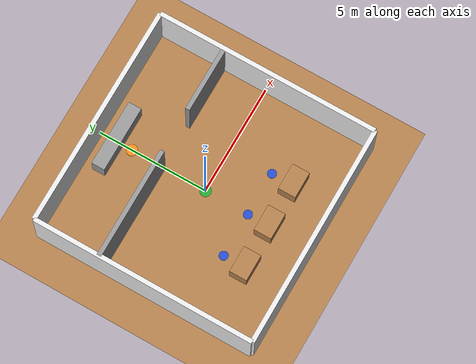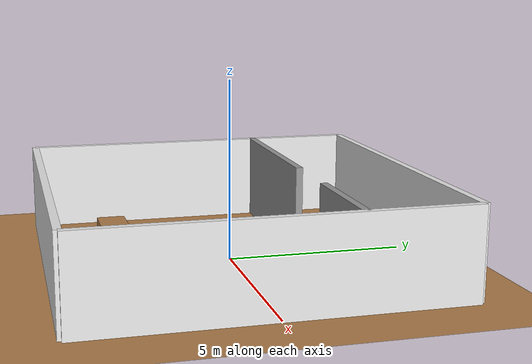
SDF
<?xml version="1.0"?>
<sdf version="1.6">
  <world name="cafe_world">

    <!--                    PHYSICS & ENGINE                          -->
    <physics type="ode">
      <real_time_update_rate>1000.0</real_time_update_rate>
      <max_step_size>0.001</max_step_size>
      <real_time_factor>1</real_time_factor>
    </physics>

    <!--                    LIGHTING                                   -->
    <light name="sun" type="directional">
      <cast_shadows>true</cast_shadows>
      <pose>0 0 10 0 0 0</pose>
      <diffuse>0.9 0.9 0.9 1</diffuse>
      <specular>0.3 0.3 0.3 1</specular>
      <direction>-0.5 0.5 -1</direction>
    </light>

    <light name="ceiling_light" type="point">
      <pose>0 0 3.5 0 0 0</pose>
      <diffuse>0.8 0.8 0.8 1</diffuse>
      <specular>0.1 0.1 0.1 1</specular>
      <attenuation>
        <range>10</range>
        <constant>0.5</constant>
        <linear>0.01</linear>
        <quadratic>0.001</quadratic>
      </attenuation>
      <cast_shadows>false</cast_shadows>
    </light>

    <!--                    GROUND PLANE                              -->
    <model name="ground_plane">
      <static>true</static>
      <link name="link">
        <collision name="collision">
          <geometry>
            <plane><normal>0 0 1</normal><size>20 20</size></plane>
          </geometry>
          <surface>
            <friction><ode><mu>100</mu><mu2>50</mu2></ode></friction>
          </surface>
        </collision>
        <visual name="visual">
          <geometry>
            <plane><normal>0 0 1</normal><size>20 20</size></plane>
          </geometry>
          <material>
            <script>
              <uri>file://media/materials/scripts/gazebo.material</uri>
              <name>Gazebo/WoodFloor</name>
            </script>
          </material>
        </visual>
      </link>
    </model>

    <!--   CAFE LAYOUT (top-down view)                               -->
    <!--       |   [KITCHEN COUNTER]       |                         -->
    <!--       |   kitchen @ (0, 3.5)      |                         -->
    <!--       | ─ ─ ─ ─ ─ ─ ─ ─ ─ ─ ─  |  <- divider wall        -->
    <!--       |      home @ (0, 0)        |                         -->

    <!-- North Wall -->
    <model name="wall_north">
      <static>true</static>
      <pose>0 5 1.25 0 0 0</pose>
      <link name="link">
        <collision name="collision">
          <geometry><box><size>10 0.2 2.5</size></box></geometry>
        </collision>
        <visual name="visual">
          <geometry><box><size>10 0.2 2.5</size></box></geometry>
          <material><script>
            <uri>file://media/materials/scripts/gazebo.material</uri>
            <name>Gazebo/White</name>
          </script></material>
        </visual>
      </link>
    </model>

    <!-- South Wall -->
    <model name="wall_south">
      <static>true</static>
      <pose>0 -5 1.25 0 0 0</pose>
      <link name="link">
        <collision name="collision">
          <geometry><box><size>10 0.2 2.5</size></box></geometry>
        </collision>
        <visual name="visual">
          <geometry><box><size>10 0.2 2.5</size></box></geometry>
          <material><script>
            <uri>file://media/materials/scripts/gazebo.material</uri>
            <name>Gazebo/White</name>
          </script></material>
        </visual>
      </link>
    </model>

    <!-- East Wall -->
    <model name="wall_east">
      <static>true</static>
      <pose>5 0 1.25 0 0 0</pose>
      <link name="link">
        <collision name="collision">
          <geometry><box><size>0.2 10 2.5</size></box></geometry>
        </collision>
        <visual name="visual">
          <geometry><box><size>0.2 10 2.5</size></box></geometry>
          <material><script>
            <uri>file://media/materials/scripts/gazebo.material</uri>
            <name>Gazebo/White</name>
          </script></material>
        </visual>
      </link>
    </model>

    <!-- West Wall -->
    <model name="wall_west">
      <static>true</static>
      <pose>-5 0 1.25 0 0 0</pose>
      <link name="link">
        <collision name="collision">
          <geometry><box><size>0.2 10 2.5</size></box></geometry>
        </collision>
        <visual name="visual">
          <geometry><box><size>0.2 10 2.5</size></box></geometry>
          <material><script>
            <uri>file://media/materials/scripts/gazebo.material</uri>
            <name>Gazebo/White</name>
          </script></material>
        </visual>
      </link>
    </model>

    <!-- Kitchen Divider Wall (partial — leaves doorway gap) -->
    <model name="wall_divider_left">
      <static>true</static>
      <pose>-2.5 2.0 1.25 0 0 0</pose>
      <link name="link">
        <collision name="collision">
          <geometry><box><size>5 0.2 2.5</size></box></geometry>
        </collision>
        <visual name="visual">
          <geometry><box><size>5 0.2 2.5</size></box></geometry>
          <material><script>
            <uri>file://media/materials/scripts/gazebo.material</uri>
            <name>Gazebo/Grey</name>
          </script></material>
        </visual>
      </link>
    </model>

    <model name="wall_divider_right">
      <static>true</static>
      <pose>3.5 2.0 1.25 0 0 0</pose>
      <link name="link">
        <collision name="collision">
          <geometry><box><size>3 0.2 2.5</size></box></geometry>
        </collision>
        <visual name="visual">
          <geometry><box><size>3 0.2 2.5</size></box></geometry>
          <material><script>
            <uri>file://media/materials/scripts/gazebo.material</uri>
            <name>Gazebo/Grey</name>
          </script></material>
        </visual>
      </link>
    </model>

    <!--                    KITCHEN COUNTER                           -->
    <model name="kitchen_counter">
      <static>true</static>
      <pose>0 4.2 0.45 0 0 0</pose>
      <link name="link">
        <collision name="collision">
          <geometry><box><size>3.0 0.6 0.9</size></box></geometry>
        </collision>
        <visual name="visual">
          <geometry><box><size>3.0 0.6 0.9</size></box></geometry>
          <material><script>
            <uri>file://media/materials/scripts/gazebo.material</uri>
            <name>Gazebo/Grey</name>
          </script></material>
        </visual>
      </link>
    </model>

    <!--                    DINING TABLES                             -->

    <model name="dining_table_1">
      <static>true</static>
      <pose>-2 -3 0.375 0 0 0</pose>
      <link name="link">
        <collision name="collision">
          <geometry><box><size>1.2 0.8 0.75</size></box></geometry>
        </collision>
        <visual name="visual">
          <geometry><box><size>1.2 0.8 0.75</size></box></geometry>
          <material><script>
            <uri>file://media/materials/scripts/gazebo.material</uri>
            <name>Gazebo/WoodPallet</name>
          </script></material>
        </visual>
      </link>
    </model>

    <model name="dining_table_2">
      <static>true</static>
      <pose>0 -3 0.375 0 0 0</pose>
      <link name="link">
        <collision name="collision">
          <geometry><box><size>1.2 0.8 0.75</size></box></geometry>
        </collision>
        <visual name="visual">
          <geometry><box><size>1.2 0.8 0.75</size></box></geometry>
          <material><script>
            <uri>file://media/materials/scripts/gazebo.material</uri>
            <name>Gazebo/WoodPallet</name>
          </script></material>
        </visual>
      </link>
    </model>

    <model name="dining_table_3">
      <static>true</static>
      <pose>2 -3 0.375 0 0 0</pose>
      <link name="link">
        <collision name="collision">
          <geometry><box><size>1.2 0.8 0.75</size></box></geometry>
        </collision>
        <visual name="visual">
          <geometry><box><size>1.2 0.8 0.75</size></box></geometry>
          <material><script>
            <uri>file://media/materials/scripts/gazebo.material</uri>
            <name>Gazebo/WoodPallet</name>
          </script></material>
        </visual>
      </link>
    </model>

    <!--              FLOOR MARKERS FOR NAMED LOCATIONS               -->

    <!-- Green = Home -->
    <model name="marker_home">
      <static>true</static>
      <pose>0 0 0.01 0 0 0</pose>
      <link name="link">
        <visual name="visual">
          <geometry><cylinder><radius>0.25</radius><length>0.02</length></cylinder></geometry>
          <material><script>
            <uri>file://media/materials/scripts/gazebo.material</uri>
            <name>Gazebo/Green</name>
          </script></material>
        </visual>
      </link>
    </model>

    <!-- Orange = Kitchen -->
    <model name="marker_kitchen">
      <static>true</static>
      <pose>0 3.5 0.01 0 0 0</pose>
      <link name="link">
        <visual name="visual">
          <geometry><cylinder><radius>0.25</radius><length>0.02</length></cylinder></geometry>
          <material><script>
            <uri>file://media/materials/scripts/gazebo.material</uri>
            <name>Gazebo/Orange</name>
          </script></material>
        </visual>
      </link>
    </model>

    <!-- Blue = Table 1 -->
    <model name="marker_table_1">
      <static>true</static>
      <pose>-2 -2 0.01 0 0 0</pose>
      <link name="link">
        <visual name="visual">
          <geometry><cylinder><radius>0.2</radius><length>0.02</length></cylinder></geometry>
          <material><script>
            <uri>file://media/materials/scripts/gazebo.material</uri>
            <name>Gazebo/Blue</name>
          </script></material>
        </visual>
      </link>
    </model>

    <!-- Blue = Table 2 -->
    <model name="marker_table_2">
      <static>true</static>
      <pose>0 -2 0.01 0 0 0</pose>
      <link name="link">
        <visual name="visual">
          <geometry><cylinder><radius>0.2</radius><length>0.02</length></cylinder></geometry>
          <material><script>
            <uri>file://media/materials/scripts/gazebo.material</uri>
            <name>Gazebo/Blue</name>
          </script></material>
        </visual>
      </link>
    </model>

    <!-- Blue = Table 3 -->
    <model name="marker_table_3">
      <static>true</static>
      <pose>2 -2 0.01 0 0 0</pose>
      <link name="link">
        <visual name="visual">
          <geometry><cylinder><radius>0.2</radius><length>0.02</length></cylinder></geometry>
          <material><script>
            <uri>file://media/materials/scripts/gazebo.material</uri>
            <name>Gazebo/Blue</name>
          </script></material>
        </visual>
      </link>
    </model>

  </world>
</sdf>
